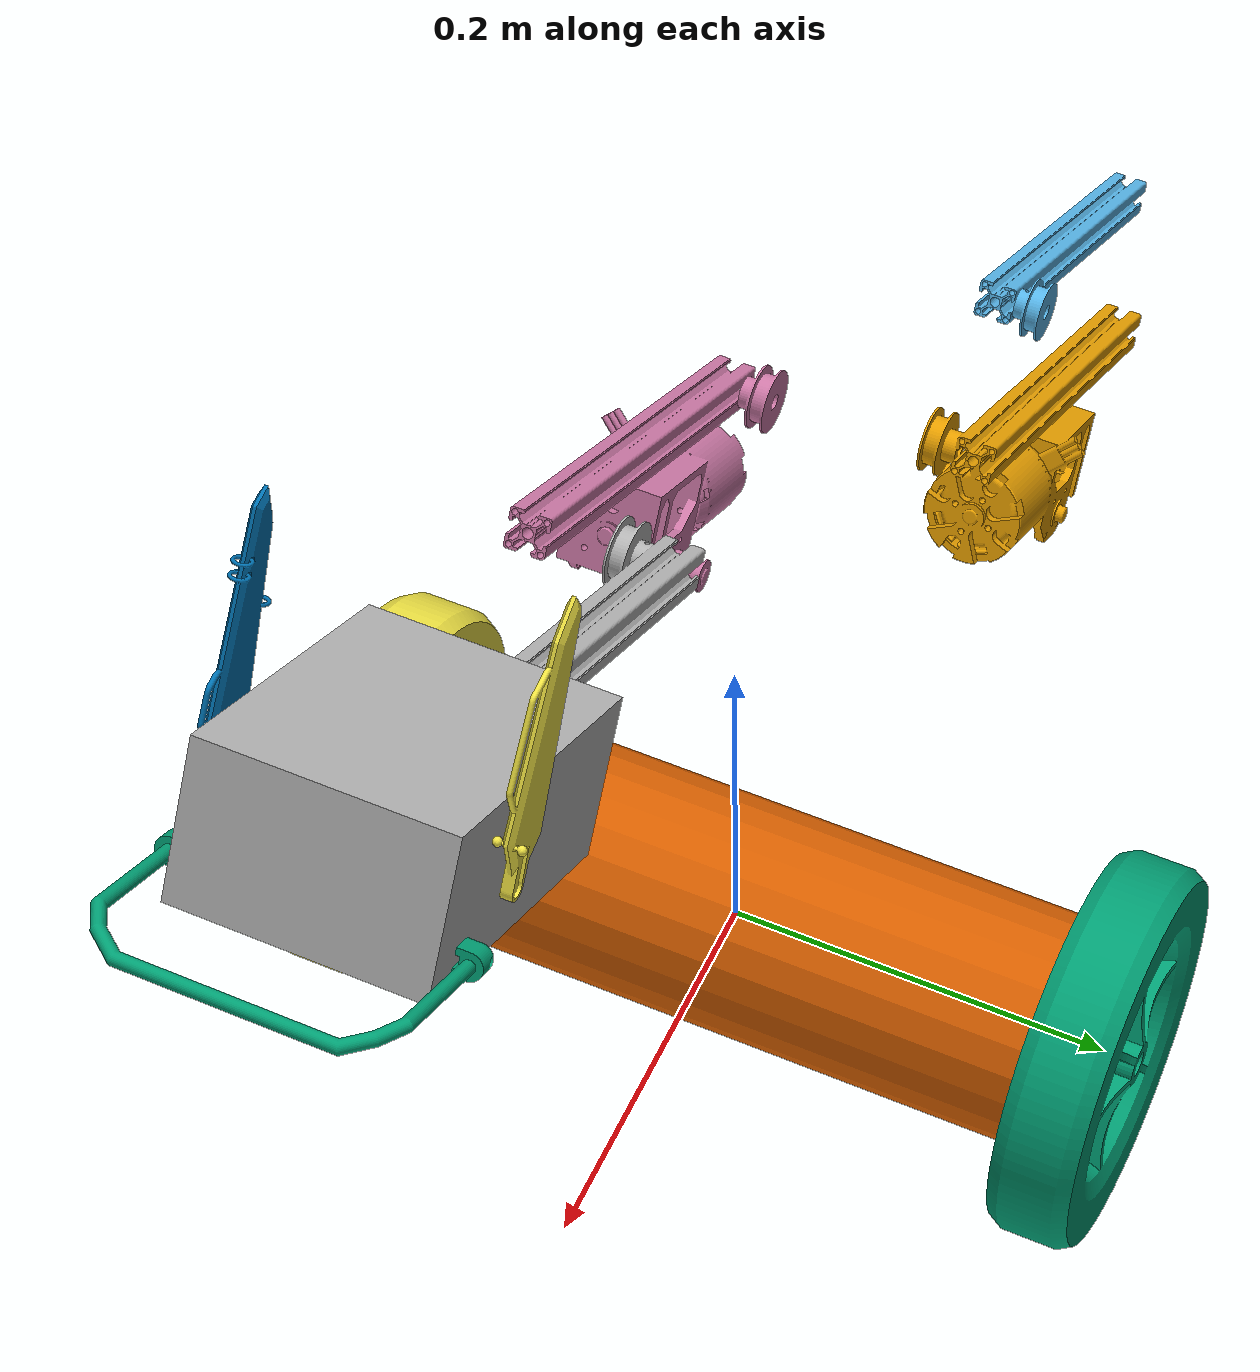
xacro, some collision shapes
<?xml version="1.0"?>
<robot xmlns:xacro="htpp://www.ros.org/wiki/xacro"
       name="frea">

<xacro:include filename="$(find frea_description)/urdf/chassis/chassis.urdf.xacro"/>
<xacro:include filename="$(find frea_description)/urdf/head/head.urdf.xacro"/>
<xacro:include filename="$(find frea_description)/urdf/neck/neck_mid.urdf.xacro"/>
<xacro:include filename="$(find frea_description)/urdf/neck/neck_end.urdf.xacro"/>

<!-- Dummy parent link for Gazebo -->
<link name="parent_link"/>

<link name="fixed_base_link">
    <inertial>
        <mass value="1e-3"/>
        <inertia ixx="1e-7" ixy="0.0" ixz="0.0"
                 iyy="1e-7" iyz="0.0" izz="1e-7"/>
    </inertial>
</link>

<joint name="parent_joint" type="fixed">
    <parent link="parent_link"/>
    <child link="fixed_base_link"/>
</joint>

<gazebo>
    <plugin name="gazebo_ros_control" filename="libgazebo_ros_control.so">
        <robotNamespace>/</robotNamespace>
    </plugin>

    <!-- Plugin to dynamically change the load on the head -->
    <plugin name="head_weight" filename="libfrea_adjustable_weight.so">
        <topicName>/adjust_weight/head</topicName>
        <linkName>head_link</linkName>
        <position>0.08 0 -0.082</position>
    </plugin>

    <!-- Plugin to dynamically change the load on the tail -->
    <plugin name="tail_weight" filename="libfrea_adjustable_weight.so">
        <topicName>/adjust_weight/tail</topicName>
        <linkName>lower_tail_link</linkName>
        <position>0 0 0.225</position>
    </plugin>

    <!-- Plugin to detect and publish contacts with the environment -->
    <plugin name="contact_detector" filename="libfrea_contact_detector.so">
        <topicName>/contacts</topicName>
        <!-- The wheels are supposed to be in contact with the ground, so
             we don't publish these contacts -->
        <ignoredCollision0>left_wheel_link_collision</ignoredCollision0>
        <ignoredCollision1>right_wheel_link_collision</ignoredCollision1>
    </plugin>

    <self_collide>false</self_collide>
</gazebo>

<xacro:chassis/>

<xacro:neck_mid parent="chassis_link" name="lower_neck"
                xyz="0 -0.063 0.275" rpy="0 1.57 0"/>
<xacro:neck_end parent="lower_neck_link" name="upper_neck"
                xyz="0 0.063 0.225" rpy="0 0 3.14"/>

<xacro:neck_mid parent="chassis_link" name="upper_tail"
                xyz="0 0.063 0.275" rpy="0 1.57 3.14"/>
<xacro:neck_end parent="upper_tail_link" name="lower_tail"
                xyz="0 0.063 0.225" rpy="0 0 3.14"/>

<xacro:head parent="upper_neck_link" xyz="0 0 0.315" rpy="0 -1.57 3.14"/>

</robot>

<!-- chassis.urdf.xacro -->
<robot xmlns:xacro="http://www.ros.org/wiki/xacro">

<xacro:include filename="$(find frea_description)/urdf/chassis/wheel/wheel.urdf.xacro"/>
<xacro:include filename="$(find frea_description)/urdf/sensors/imu.urdf.xacro"/>

<xacro:macro name="chassis">
    <xacro:wheel parent="chassis_link" xyz="0 0.198 0" rpy="0 0 0"
                 mirror="1" name="left_wheel"/>
    <xacro:wheel parent="chassis_link" xyz="0 -0.198 0" rpy="0 0 0"
                 mirror="-1" name="right_wheel"/>

    <xacro:imu parent="chassis_link" xyz="0 0 0" name="imu"/>

    <!-- This joint represents the "joint" between the center of the
         chassis and the constantly flat base link. It's not driveable,
         it's measured by the orientation of the IMU -->
    <joint name="chassis_joint" type="continuous">
        <axis xyz="0 1 0"/>
        <limit effort="0" velocity="0"/>
        <origin xyz="0 0 0" rpy="0 ${-30*3.14/180} 0"/>
        <parent link="fixed_base_link"/>
        <child link="chassis_link"/>
    </joint>

    <link name="chassis_link">
        <inertial>
            <origin xyz="-0.016274 0 0.028966" rpy="${30*3.14/180} 0 1.57"/>
            <mass value="5.955352"/>
            <inertia ixx="2.386e-02" ixy="4.317e-05" ixz="-1.844e-04"
                     iyy="6.679e-02" iyz="-6.456e-03" izz="5.912e-02"/>
        </inertial>

        <visual>
            <origin xyz="0 0 0" rpy="${30*3.14/180} 0 1.57"/>
            <geometry>
                <mesh filename="$(find frea_description)/meshes/chassis.stl"/>
            </geometry>
        </visual>

        <collision>
            <origin xyz="0 0 0" rpy="1.57 0 0"/>
            <geometry>
                <cylinder radius="0.06" length="0.35"/>
            </geometry>
        </collision>

        <collision>
            <origin xyz="0 0 0.12" rpy="0 0 0"/>
            <geometry>
                <box size="0.14 0.07 0.14"/>
            </geometry>
        </collision>

        <collision>
            <origin xyz="0 0 0.195" rpy="0 0 0"/>
            <geometry>
                <box size="0.02 0.02 0.2"/>
            </geometry>
        </collision>
    </link>

    <gazebo reference="chassis_link">
        <mu1>0.2</mu1>
        <mu2>0.2</mu2>
        <maxVel>0.0</maxVel>
        <minDepth>0.001</minDepth>
    </gazebo>
</xacro:macro>

</robot>

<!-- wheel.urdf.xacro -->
<robot xmlns:xacro="http://www.ros.org/wiki/xacro">

<!-- mirror parameter - 1 for the left wheel, -1 for the right wheel -->
<xacro:macro name="wheel" params="parent name xyz rpy mirror">
    <joint name="${name}_joint" type="continuous">
        <axis xyz="0 ${mirror} 0"/>
        <!-- 104:1 gear ratio, need to check these values -->
        <limit effort="10" velocity="${3*3.14}"/>
        <origin xyz="${xyz}" rpy="${rpy}"/>
        <parent link="${parent}"/>
        <child link="${name}_link"/>
    </joint>

    <link name="${name}_link">
        <inertial>
            <origin xyz="0 0 0"/>
            <mass value="0.880493"/>
            <inertia ixx="2.747e-03" ixy="0.0" ixz="0.0"
                     iyy="5.285e-03" iyz="0.0" izz="2.747e-03"/>
        </inertial>

        <visual>
            <origin xyz="0 -0.021 0" rpy="0 0 0"/>
            <geometry>
                <mesh filename="$(find frea_description)/meshes/wheel.stl"/>
            </geometry>
        </visual>
        <collision>
            <origin xyz="0 0 0" rpy="1.57 0 0"/>
            <geometry>
                <cylinder radius="0.1" length="0.042"/>
            </geometry>
        </collision>
    </link>

    <gazebo reference="${name}_link">
        <mu1>0.9</mu1>
        <mu2>0.9</mu2>
        <maxVel>0.0</maxVel>
        <minDepth>0.001</minDepth>
    </gazebo>

    <transmission name="${name}_transmission">
        <type>transmission_interface/SimpleTransmission</type>
        <joint name="${name}_joint">
            <hardwareInterface>hardware_interface/EffortJointInterface</hardwareInterface>
        </joint>
        <actuator name="${name}_motor">
            <hardwareInterface>hardware_interface/EffortJointInterface</hardwareInterface>
            <mechanicalReduction>1</mechanicalReduction>
        </actuator>
    </transmission>
</xacro:macro>

</robot>

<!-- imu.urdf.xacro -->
<robot xmlns:xacro="http://www.ros.org/wiki/xacro">

<xacro:macro name="imu" params="parent name xyz">
    <joint name="${name}_imu_sensor" type="fixed">
        <origin xyz="${xyz}" rpy="0 0 0"/>
        <parent link="${parent}"/>
        <child link="${name}_link"/>
    </joint>

    <link name="${name}_link">
        <inertial>
            <mass value="1e-6"/>
            <inertia ixx="0.0" ixy="0.0" ixz="0.0"
                     iyy="0.0" iyz="0.0" izz="0.0"/>
        </inertial>
    </link>

    <gazebo reference="${name}_link">
        <gravity>true</gravity>
        <sensor name="${name}_sensor" type="imu">
            <always_on>true</always_on>
            <update_rate>100</update_rate>
            <visualize>true</visualize>
            <topic>__default_topic__</topic>
            <plugin filename="libgazebo_ros_imu_sensor.so"
                    name="{name}_plugin">
                <topicName>${name}/data</topicName>
                <bodyName>${name}_link</bodyName>
                <updateRateHZ>0.0</updateRateHZ>
                <gaussianNoise>0.01</gaussianNoise>
                <xyzOffset>0 0 0</xyzOffset>
                <rpyOffset>0 0 0</rpyOffset>
                <frameName>${name}_link</frameName>
                <initialOrientationAsReference>false</initialOrientationAsReference>
            </plugin>
            <pose>0 0 0 0 0 0</pose>
        </sensor>
    </gazebo>
</xacro:macro>

</robot>

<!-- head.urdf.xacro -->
<robot xmlns:xacro="http://www.ros.org/wiki/xacro">

<xacro:include filename="$(find frea_description)/urdf/head/mouth/mouth.urdf.xacro"/>
<xacro:include filename="$(find frea_description)/urdf/head/ears/left_ear.urdf.xacro"/>
<xacro:include filename="$(find frea_description)/urdf/head/ears/right_ear.urdf.xacro"/>
<xacro:include filename="$(find frea_description)/urdf/sensors/frea_camera.urdf.xacro"/>

<xacro:macro name="head" params="parent xyz rpy">
    <xacro:mouth parent="head_link" xyz="0.0265 0 -0.023" rpy="0 0 0"/>
    <xacro:left_ear parent="head_link" xyz="0.005 0.062 -0.002"
                    rpy="0 0 0"/>
    <xacro:right_ear parent="head_link" xyz="0.005 -0.062 -0.002"
                     rpy="0 0 0"/>
    <xacro:frea_camera parent="head_link" xyz="0.07 0 -0.00075"
                      rpy="0 0 0" name="head"/>

    <joint name="head_joint" type="revolute">
        <axis xyz="1 0 0"/>
        <!-- One MG995 Servo -->
        <limit effort="0.85" velocity="5"
               upper="1.57" lower="-1.57"/>
        <origin xyz="${xyz}" rpy="${rpy}"/>
        <parent link="${parent}"/>
        <child link="head_link"/>
    </joint>

    <link name="head_link">
        <inertial>
            <origin xyz="-0.006087 -0.003053 -0.002113" rpy="0 0 1.57"/>
            <mass value="0.743802"/>
            <inertia ixx="1.307e-03" ixy="7.982e-05" ixz="4.672e-06"
                     iyy="1.087e-03" iyz="-2.803e-04" izz="1.637e-03"/>
        </inertial>

        <visual>
            <origin xyz="0 0 0" rpy="0 0 1.57"/>
            <geometry>
                <mesh filename="$(find frea_description)/meshes/head.stl"/>
            </geometry>
        </visual>

        <collision>
            <origin xyz="-0.025 0 0" rpy="0 0 0"/>
            <geometry>
                <box size="0.15 0.11 0.07"/>
            </geometry>
        </collision>

        <collision>
            <origin xyz="0.08 0 -0.082" rpy="1.57 0 0"/>
            <geometry>
                <cylinder radius="0.003" length="0.065"/>
            </geometry>
        </collision>

        <collision>
            <origin xyz="0.05 0.035 -0.07" rpy="0 -1.0 0"/>
            <geometry>
                <cylinder radius="0.003" length="0.045"/>
            </geometry>
        </collision>

        <collision>
            <origin xyz="0.05 -0.035 -0.07" rpy="0 -1.0 0"/>
            <geometry>
                <cylinder radius="0.003" length="0.045"/>
            </geometry>
        </collision>
    </link>

    <gazebo reference="head_link">
        <mu1>0.2</mu1>
        <mu2>0.2</mu2>
        <maxVel>0.0</maxVel>
        <minDepth>0.001</minDepth>
    </gazebo>

    <transmission name="head_transmission">
        <type>transmission_interface/SimpleTransmission</type>
        <joint name="head_joint">
            <hardwareInterface>hardware_interface/EffortJointInterface</hardwareInterface>
        </joint>
        <actuator name="head_motor">
            <hardwareInterface>hardware_interface/EffortJointInterface</hardwareInterface>
            <mechanicalReduction>1</mechanicalReduction>
        </actuator>
    </transmission>
</xacro:macro>

</robot>

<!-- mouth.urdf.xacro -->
<robot xmlns:xacro="http://www.ros.org/wiki/xacro">

<xacro:macro name="mouth" params="parent xyz rpy">
    <joint name="mouth_joint" type="revolute">
        <axis xyz="0 -1 0"/>
        <!-- 2 SG90 servos working in parallel for the mouth -->
        <limit effort="0.49" velocity="15.7"
               upper="${10*3.14/180}" lower="${-60*3.14/180}"/>
        <origin xyz="${xyz}" rpy="${rpy}"/>
        <parent link="${parent}"/>
        <child link="mouth_link"/>
    </joint>

    <link name="mouth_link">
        <inertial>
            <origin xyz="${0.0785-0.026117} 0.0 ${-0.0075+0.004753}"
                    rpy="0 0 1.57"/>
            <mass value="0.034405"/>
            <inertia ixx="2.688e-05" ixy="0.0" ixz="0.0"
                     iyy="9.225e-05" iyz="-2.827e-06" izz="1.179e-04"/>
        </inertial>
        <visual>
            <origin xyz="0.0785 0 -0.0075" rpy="0 0 1.57"/>
            <geometry>
                <mesh filename="$(find frea_description)/meshes/mouth.stl"/>
            </geometry>
        </visual>
        <collision>
            <origin xyz="0.0785 0 -0.0075" rpy="1.57 0 0"/>
            <geometry>
                <cylinder radius="0.003" length="0.1"/>
            </geometry>
        </collision>
        <collision>
            <origin xyz="${0.0785-0.04} 0.062 ${-0.0075+0.008}"
                    rpy="0 1.57 0"/>
            <geometry>
                <cylinder radius="0.003" length="0.06"/>
            </geometry>
        </collision>
        <collision>
            <origin xyz="${0.0785-0.04} -0.062 ${-0.0075+0.008}"
                    rpy="0 1.57 0"/>
            <geometry>
                <cylinder radius="0.003" length="0.06"/>
            </geometry>
        </collision>
    </link>

    <gazebo reference="mouth_link">
        <mu1>0.3</mu1>
        <mu2>0.3</mu2>
        <maxVel>0.0</maxVel>
        <minDepth>0.001</minDepth>
    </gazebo>

    <transmission name="mouth_transmission">
        <type>transmission_interface/SimpleTransmission</type>
        <joint name="mouth_joint">
            <hardwareInterface>hardware_interface/EffortJointInterface</hardwareInterface>
        </joint>
        <actuator name="mouth_motor">
            <hardwareInterface>hardware_interface/EffortJointInterface</hardwareInterface>
            <mechanicalReduction>1</mechanicalReduction>
        </actuator>
    </transmission>
</xacro:macro>

</robot>

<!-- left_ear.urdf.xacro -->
<robot xmlns:xacro="http://www.ros.org/wiki/xacro">

<xacro:macro name="left_ear" params="parent xyz rpy">
    <joint name="left_ear_joint" type="revolute">
        <axis xyz="0 1 0"/>
        <!-- One SG90 Servo -->
        <limit effort="0.245" velocity="15.7"
               upper="${20*3.14/180}" lower="${-75*3.14/180}"/>
        <origin xyz="${xyz}" rpy="${rpy}"/>
        <parent link="${parent}"/>
        <child link="left_ear_link"/>
    </joint>

    <link name="left_ear_link">
        <inertial>
            <origin xyz="-0.002515 -0.001926 0.05596" rpy="1.57 -1.57 0"/>
            <mass value="0.016118"/>
            <inertia ixx="1.528e-06" ixy="2.682e-07" ixz="1.040e-08"
                     iyy="1.341e-05" iyz="-9.84e-10" izz="1.486e-05"/>
        </inertial>

        <visual>
           <origin xyz="0 0.0025 0" rpy="1.57 -1.57 0"/>
           <geometry>
                <mesh filename="$(find frea_description)/meshes/left_ear.stl"/>
            </geometry>
        </visual>

        <collision>
           <origin xyz="0.005 0 0.06" rpy="0 0 0"/>
            <geometry>
                <box size="0.04 0.005 0.12"/>
            </geometry>
        </collision>
    </link>

    <gazebo reference="left_ear_link">
        <mu1>0.2</mu1>
        <mu2>0.2</mu2>
        <maxVel>0.0</maxVel>
        <minDepth>0.001</minDepth>
    </gazebo>

    <transmission name="left_ear_transmission">
        <type>transmission_interface/SimpleTransmission</type>
        <joint name="left_ear_joint">
            <hardwareInterface>hardware_interface/EffortJointInterface</hardwareInterface>
        </joint>
        <actuator name="left_ear_motor">
            <hardwareInterface>hardware_interface/EffortJointInterface</hardwareInterface>
            <mechanicalReduction>1</mechanicalReduction>
        </actuator>
    </transmission>
</xacro:macro>

</robot>

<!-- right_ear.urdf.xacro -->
<robot xmlns:xacro="http://www.ros.org/wiki/xacro">

<xacro:macro name="right_ear" params="parent xyz rpy">
    <joint name="right_ear_joint" type="revolute">
        <axis xyz="0 1 0"/>
        <!-- One SG90 Servo -->
        <limit effort="0.245" velocity="15.7"
               upper="${20*3.14/180}" lower="${-75*3.14/180}"/>
        <origin xyz="${xyz}" rpy="${rpy}"/>
        <parent link="${parent}"/>
        <child link="right_ear_link"/>
    </joint>

    <link name="right_ear_link">
        <inertial>
            <origin xyz="-0.002515 0.000906 0.054113" rpy="-1.57 -1.57 0"/>
            <mass value="0.01533"/>
            <inertia ixx="1.167e-06" ixy="3.845e-07" ixz="-9.99e-09"
                     iyy="1.284e-05" iyz="-3.57e-10" izz="1.394e-05"/>
        </inertial>

        <visual>
           <origin xyz="0 0.0025 0" rpy="-1.57 -1.57 0"/>
           <geometry>
                <mesh filename="$(find frea_description)/meshes/right_ear.stl"/>
            </geometry>
        </visual>

        <collision>
           <origin xyz="0 0 0.06" rpy="0 0 0"/>
            <geometry>
                <box size="0.03 0.005 0.12"/>
            </geometry>
        </collision>
    </link>

    <gazebo reference="right_ear_link">
        <mu1>0.2</mu1>
        <mu2>0.2</mu2>
        <maxVel>0.0</maxVel>
        <minDepth>0.001</minDepth>
    </gazebo>

    <transmission name="right_ear_transmission">
        <type>transmission_interface/SimpleTransmission</type>
        <joint name="right_ear_joint">
            <hardwareInterface>hardware_interface/EffortJointInterface</hardwareInterface>
        </joint>
        <actuator name="right_ear_motor">
            <hardwareInterface>hardware_interface/EffortJointInterface</hardwareInterface>
            <mechanicalReduction>1</mechanicalReduction>
        </actuator>
    </transmission>
</xacro:macro>

</robot>

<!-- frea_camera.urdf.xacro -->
<robot xmlns:xacro="http://www.ros.org/wiki/xacro">

<xacro:macro name="frea_camera" params="parent name xyz rpy">
    <!-- dummy camera links for gazebo sensors to hook into -->
    <!-- Standard coordinate frame (x-forwards, z up) -->
    <link name="${name}_camera_link"/>
    <!-- Camera coordinate frame (z forwards, y down) -->
    <link name="${name}_camera_link_optical"/>

    <joint name="${name}_camaera_joint_optical" type="fixed">
        <origin xyz="0 0 0" rpy="1.57 0 -1.57"/>
        <parent link="${name}_camera_link"/>
        <child link="${name}_camera_link_optical"/>
    </joint>

    <joint name="${name}_camera_joint" type="fixed">
        <origin xyz="${xyz}" rpy="${rpy}"/>
        <parent link="${parent}"/>
        <child link="${name}_camera_link"/>
    </joint>

    <gazebo reference="${name}_camera_link">
        <sensor type="camera" name="${name}_camera_sensor">
            <update_rate>30.0</update_rate>
            <camera name="${name}_camera">
                <horizontal_fov>1.3962</horizontal_fov>
                <image>
                    <width>640</width>
                    <height>480</height>
                    <format>R8G8B8</format>
                </image>
                <clip>
                    <near>0.01</near>
                    <far>300</far>
                </clip>
                <noise>
                    <type>gaussian</type>
                    <mean>0.0</mean>
                    <stddev>0.007</stddev>
                </noise>
            </camera>
            <plugin name="${name}_camera_plugin"
                    filename="libgazebo_ros_camera.so">
                <alwaysOn>true</alwaysOn>
                <updateRate>0.0</updateRate>
                <imageTopicName>${name}_camera/image_raw</imageTopicName>
                <cameraInfoTopicName>${name}_camera/camera_info</cameraInfoTopicName>
                <frameName>${name}_camera_link_optical</frameName>
                <cameraName>${name}_camera</cameraName>
                <hackBaseLine>0.07</hackBaseLine>
                <distortionK1>-0.430658</distortionK1>
                <distortionK2>0.235174</distortionK2>
                <distortionK3>0.000098</distortionK3>
                <distortionT1>-0.000494</distortionT1>
                <distortionT2>0</distortionT2>
            </plugin>
        </sensor>
    </gazebo>
</xacro:macro>

</robot>

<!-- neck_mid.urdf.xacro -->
<robot xmlns:xacro="http://www.ros.org/wiki/xacro">

<xacro:macro name="neck_mid" params="parent name xyz rpy">
    <joint name="${name}_joint" type="revolute">
        <axis xyz="0 1 0"/>
        <!-- 370 Kv BLDC with 40:1 reduction ratio -->
        <limit effort="24" velocity="6.28"
               upper="${120*3.14/180}" lower="${-120*3.14/180}"/>
        <origin xyz="${xyz}" rpy="${rpy}"/>
        <parent link="${parent}"/>
        <child link="${name}_link"/>
    </joint>

    <link name="${name}_link">
        <inertial>
            <origin xyz="0.033921 0.000591 0.069876" rpy="1.57 0 1.57"/>
            <mass value="0.919374"/>
            <inertia ixx="1.665e-03" ixy="1.833e-06" ixz="-2.934e-06"
                     iyy="4.004e-04" iyz="1.018e-04" izz="1.531e-03"/>
        </inertial>

        <visual>
            <origin xyz="0 0 0" rpy="1.57 0 1.57"/>
            <geometry>
                <mesh filename="$(find frea_description)/meshes/mid_link.stl"/>
            </geometry>
        </visual>

        <collision>
            <origin xyz="0 0 0.125" rpy="0 0 0"/>
            <geometry>
                <box size="0.02 0.02 0.25"/>
            </geometry>
        </collision>

        <collision>
            <origin xyz="0.04 0 0.08" rpy="0 0 0"/>
            <geometry>
                <box size="0.065 0.065 0.12"/>
            </geometry>
        </collision>
    </link>

    <gazebo reference="${name}_link">
        <mu1>0.2</mu1>
        <mu2>0.2</mu2>
        <maxVel>0.0</maxVel>
        <minDepth>0.001</minDepth>
    </gazebo>

    <transmission name="${name}_transmission">
        <type>transmission_interface/SimpleTransmission</type>
        <joint name="${name}_joint">
            <hardwareInterface>hardware_interface/EffortJointInterface</hardwareInterface>
        </joint>
        <actuator name="${name}_joint">
            <hardwareInterface>hardware_interface/EffortJointInterface</hardwareInterface>
            <mechanicalReduction>1</mechanicalReduction>
        </actuator>
    </transmission>
</xacro:macro>

</robot>

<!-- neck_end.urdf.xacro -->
<robot xmlns:xacro="http://www.ros.org/wiki/xacro">

<xacro:macro name="neck_end" params="parent name xyz rpy">
    <joint name="${name}_joint" type="revolute">
        <axis xyz="0 1 0"/>
        <!-- 370 Kv BLDC with 40:1 reduction ratio -->
        <limit effort="24" velocity="6.28"
               upper="${120*3.14/180}" lower="${-120*3.14/180}"/>
        <origin xyz="${xyz}" rpy="${rpy}"/>
        <parent link="${parent}"/>
        <child link="${name}_link"/>
    </joint>

    <link name="${name}_link">
        <inertial>
            <origin xyz="-0.004 0.002964 0.107674" rpy="1.57 0 1.57"/>
            <mass value="0.099676"/>
            <inertia ixx="6.109e-04" ixy="2.886e-05" ixz="3.265e-09"
                     iyy="1.291e-04" iyz="-2.792e-08" izz="6.155e-04"/>
        </inertial>

        <visual>
            <origin xyz="0 0 0" rpy="1.57 0 1.57"/>
            <geometry>
                <mesh filename="$(find frea_description)/meshes/end_link.stl"/>
            </geometry>
        </visual>

        <collision>
            <origin xyz="0 0 0.125" rpy="0 0 0"/>
            <geometry>
                <box size="0.02 0.02 0.25"/>
            </geometry>
        </collision>
    </link>

    <gazebo reference="${name}_link">
        <mu1>0.2</mu1>
        <mu2>0.2</mu2>
        <maxVel>0.0</maxVel>
        <minDepth>0.001</minDepth>
    </gazebo>

    <transmission name="${name}_transmission">
        <type>transmission_interface/SimpleTransmission</type>
        <joint name="${name}_joint">
            <hardwareInterface>hardware_interface/EffortJointInterface</hardwareInterface>
        </joint>
        <actuator name="${name}_joint">
            <hardwareInterface>hardware_interface/EffortJointInterface</hardwareInterface>
            <mechanicalReduction>1</mechanicalReduction>
        </actuator>
    </transmission>
</xacro:macro>

</robot>
